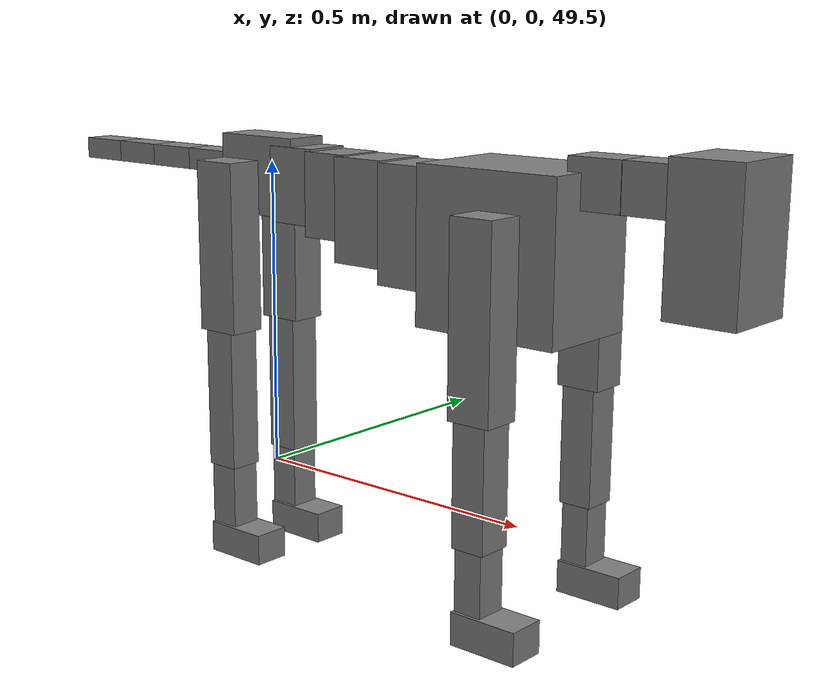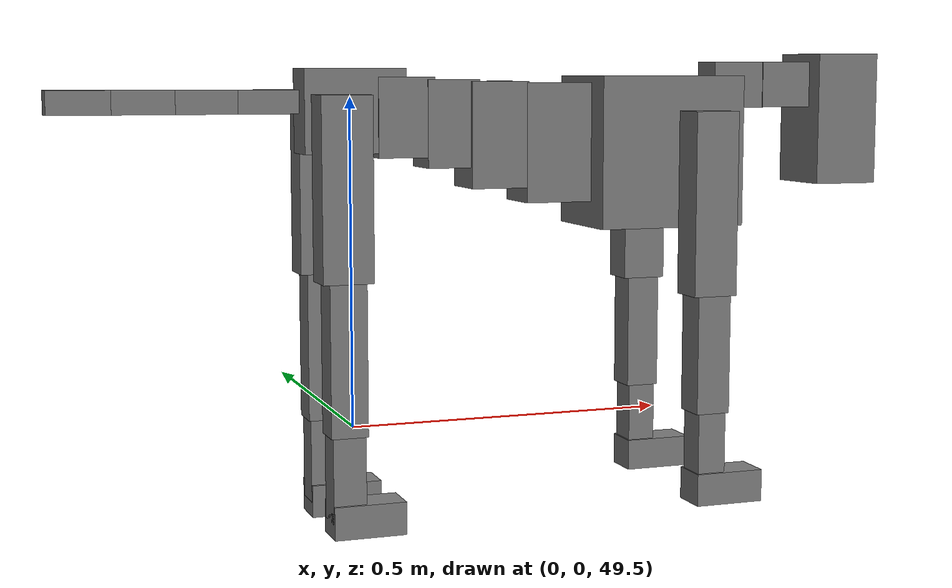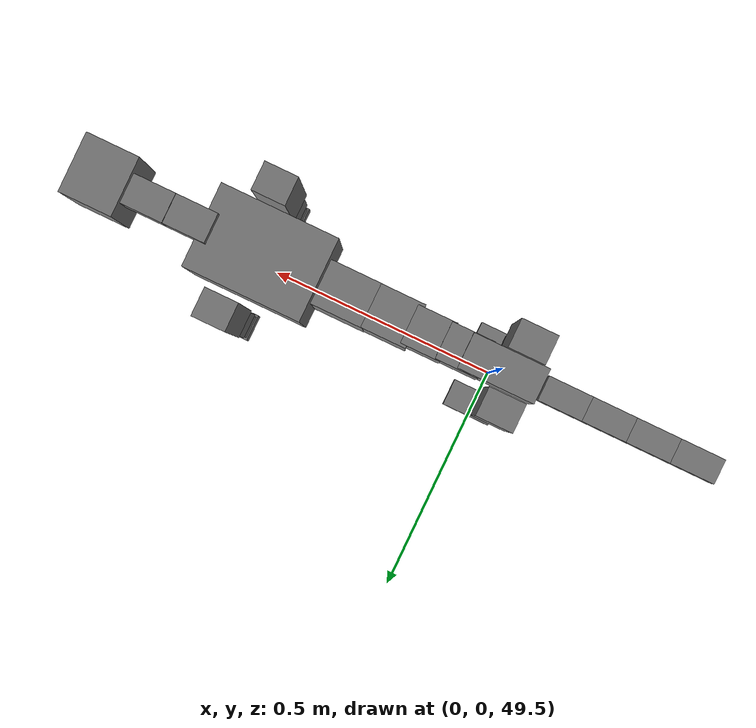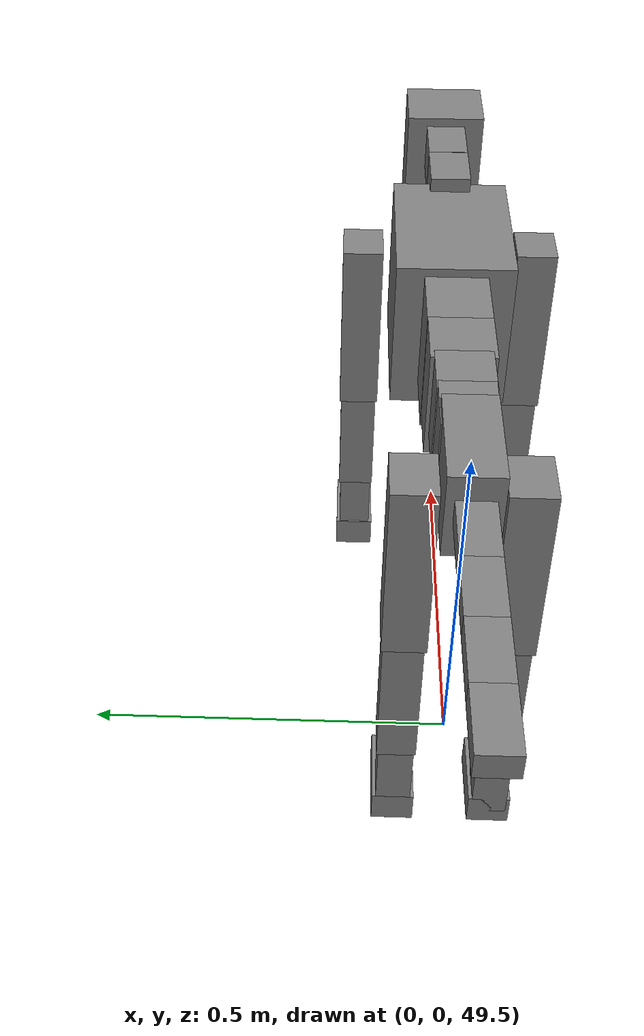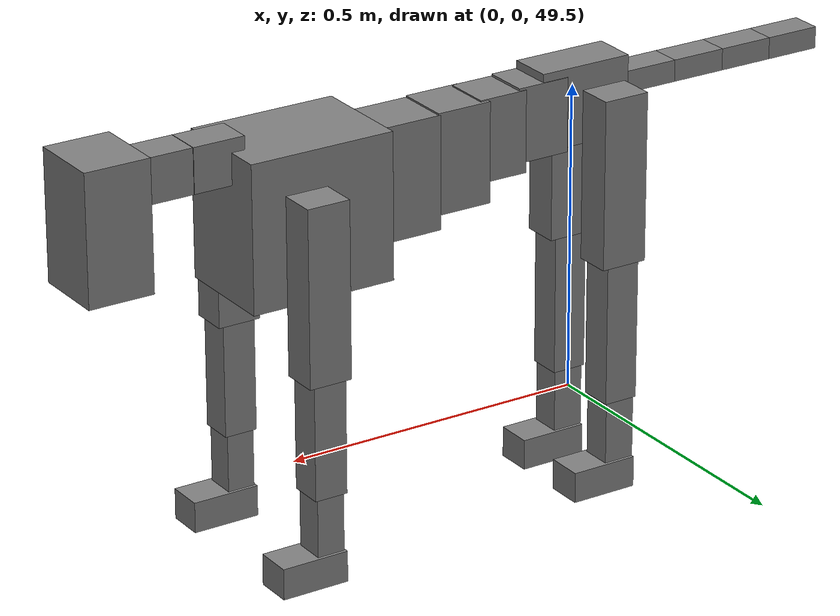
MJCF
<mujoco model="dog">

    <default>
        <joint armature="0.02" stiffness="1" damping="0.2" limited="true"/>
        <geom condim="3" friction="1 0.05 0.05" margin="0.01"/>
        <motor ctrllimited="true" ctrlrange="-1.0 1.0" forcelimited="true" gear="50"/>
    </default>

    <compiler inertiafromorphgymeom="true" angle="radian"/>

    <option timestep="0.016" iterations="50" tolerance="1e-10" solver="Newton" jacobian="dense" cone="pyramidal"/>

    <size nconmax="20000" njmax="60000" nstack="5000000"/>
    <visual>
        <map force="0.1" zfar="30"/>
        <rgba haze="0.15 0.25 0.35 1"/>
        <quality shadowsize="2048"/>
        <global offwidth="800" offheight="800"/>
    </visual>

    <asset>
        <texture type="skybox" builtin="gradient" rgb1="0.3 0.5 0.7" rgb2="0 0 0" width="512" height="512"/>
        <texture name="texplane" type="2d" builtin="checker" rgb1=".2 .3 .4" rgb2=".1 0.15 0.2" width="512" height="512"
                 mark="cross" markrgb=".8 .8 .8"/>
        <texture name="texgeom" type="cube" builtin="flat" mark="cross" width="127" height="1278"
                 rgb1="0.8 0.6 0.4" rgb2="0.8 0.6 0.4" markrgb="1 1 1" random="0.01"/>

        <material name="matplane" reflectance="0.3" texture="texplane" texrepeat="1 1" texuniform="true"/>
        <material name="matgeom" texture="texgeom" texuniform="true" rgba="0.8 0.6 .4 1"/>
    </asset>

    <worldbody>
        <geom name="floor" pos="0 0 0" size="0 0 .25" type="plane" material="matplane" condim="3"/>

        <light directional="false" diffuse=".2 .2 .2" specular="0 0 0" pos="0 0 5" dir="0 0 -1" castshadow="false"/>
        <light mode="targetbodycom" target="torso" directional="false" diffuse=".8 .8 .8" specular="0.3 0.3 0.3"
               pos="0 0 4.0" dir="0 0 -1"/>

        <body name="root" pos="0 0 50">
            <freejoint name="root_1"/>
            <geom type="box" pos="0 0 -0.02" size="0.0774  0.0358  0.063" density="2030"/>

            <body name="spine1" pos="0.054 0 0">
                <joint name="spine1_y" axis="0 1 0" range="0 0.7" limited="true"/>
                <geom type="box" pos="0.02375 0 -0.03" size="0.04375  0.0375  0.05985" density="2030"/>

                <body name="spine2" pos="0.0612 0 0">
                    <joint name="spine2_y" axis="0 1 0" range="-0.15 0.15" limited="true"/>
                    <geom type="box" pos="0.03555  0  -0.04" size="0.04055  0.039  0.06615" density="2030"/>

                    <body name="spine3" pos="0.0730 0 0">
                        <joint name="spine3_y" axis="0 1 0" range="-0.15 0.15" limited="true"/>
                        <geom type="box" pos="0.03555  0  -0.057" size="0.04555  0.0445  0.081" density="2030"/>

                        <body name="spine4" pos="0.0780 0 0">
                            <joint name="spine4_y" axis="0 1 0" range="-0.15 0.15" limited="true"/>
                            <geom type="box" pos="0.05265  0  -0.07" size="0.05265  0.045  0.09135" density="2030"/>

                            <body name="torso" pos="0.1082 0 0">
                                <joint name="torso_y" axis="0 1 0" range="-0.15 0.15" limited="true"/>
                                <geom type="box" pos="0.11925  0  -0.085" size="0.11925  0.085  0.11745"
                                      density="2030"/>

                                <body name="neck1" pos="0.2160  0   0.0180">
                                    <joint name="neck1_y" axis="0 1 0" range="-1.2  -1" limited="true"/>
                                    <geom type="box" pos="0.0423  0  0" size="0.0423  0.03  0.036" density="2325"/>

                                    <body name="neck2" pos="0.0853  0  0">
                                        <joint name="neck2_y" axis="0 1 0" range="0.1  0" limited="true"/>
                                        <geom type="box" pos="0.0423  0  0" size="0.0423  0.03  0.036" density="2325"/>

                                        <body name="head" pos="0.0853  0  0">
                                            <joint name="head_y" axis="0 1 0" range="-0.3  -0.2" limited="true"/>
                                            <geom type="box" pos="0.0531  0  -0.055" size="0.0531  0.06  0.1044"
                                                  density="4030"/>

                                        </body>
                                    </body>
                                </body>

                                <body name="front_shoulder" pos="0.156  0   -0.0480">
                                    <joint name="front_shoulder_y" axis="0 1 0" range="-1 1.5" limited="true"/>
                                    <geom type="box" pos="0   0.13  -0.1142" size="0.0351  0.03  0.14085"
                                          density="1158"/>
                                    <geom type="box" pos="0  -0.13  -0.1142" size="0.0351  0.03  0.14085"
                                          density="1158"/>

                                    <body name="front_elbow" pos="0  0  -0.2284">
                                        <joint name="front_elbow_y" axis="0 1 0" range="-2 0" limited="true"/>
                                        <geom type="box" pos="0   0.13   -0.1054" size="0.0269  0.0275  0.1039"
                                              density="1081"/>
                                        <geom type="box" pos="0  -0.13  -0.1054" size="0.0269  0.0275  0.1039"
                                              density="1081"/>

                                        <body name="front_wrist" pos="0  0  -0.2107">
                                            <joint name="front_wrist_y" axis="0 1 0" range="-0.2 0" limited="true"/>
                                            <geom type="box" pos="0   0.13   -0.0536" size="0.0225  0.025  0.06675"
                                                  density="1664"/>
                                            <geom type="box" pos="0  -0.13  -0.0536" size="0.0225  0.025  0.06675"
                                                  density="1664"/>

                                            <body name="front_finger_end" pos="0  0  -0.1073">
                                                <joint name="front_finger_y" axis="0 1 0" range="-0.4 1"
                                                       limited="true"/>
                                                <geom type="box" pos="0.03   0.13  -0.01" size="0.055   0.03   0.025 "
                                                      density="1515"/>
                                                <geom type="box" pos="0.03  -0.13  -0.01" size="0.055   0.03   0.025 "
                                                      density="1515"/>

                                            </body>

                                        </body>
                                    </body>
                                </body>

                            </body>
                        </body>
                    </body>
                </body>
            </body>

            <body name="back_hip" pos="-0.03 0 -0.018">
                <joint name="back_hip_y" axis="0 1 0" range="-1.5 0.3" limited="true"/>
                <geom type="box" pos="0  0.07    -0.1140" size="0.03825   0.03   0.1368 " density="1154"/>
                <geom type="box" pos="0 -0.07  -0.1140" size="0.03825   0.03   0.1368 " density="1154"/>

                <body name="back_knee" pos="0 0 -0.2281">
                    <joint name="back_knee_y" axis="0 1 0" range="0 2.8" limited="true"/>
                    <geom type="box" pos="0  0.07  -0.1172" size="0.0279   0.0275  0.13275" density="1227"/>
                    <geom type="box" pos="0 -0.07  -0.1172" size="0.0279   0.0275  0.13275" density="1227"/>

                    <body name="back_ankle" pos="0 0 -0.2343">
                        <joint name="back_ankle_y" axis="0 1 0" range="-2.2 0" limited="true"/>
                        <geom type="box" pos="0  0.07  -0.0666" size="0.025  0.025  0.07785 " density="1284"/>
                        <geom type="box" pos="0 -0.07  -0.0666" size="0.025  0.025  0.07785 " density="1284"/>

                        <body name="back_toe_end" pos="0 0 -0.1322">
                            <joint name="back_toe_y" axis="0 1 0" range="-0.4 1" limited="true"/>
                            <geom type="box" pos="0.03  0.07  -0.01" size="0.055   0.03 0.025" density="1515"/>
                            <geom type="box" pos="0.03 -0.07  -0.01" size="0.055   0.03 0.025" density="1515"/>

                        </body>
                    </body>
                </body>
            </body>

            <body name="tail1" pos="-0.074 0 -0.006">
                <joint name="tail1_y" axis="0 1 0" range="-0.2 0.2" limited="true"/>
                <geom type="box" pos="-0.0536  0  0" size="0.045  0.025  0.0175" density="1587"/>

                <body name="tail2" pos="-0.09 0 0">
                    <joint name="tail2_y" axis="0 1 0" range="-0.2 0.2" limited="true"/>
                    <geom type="box" pos="-0.0536  0  0" size="0.045  0.025  0.0175" density="1587"/>

                    <body name="tail3" pos="-0.09 0 0">
                        <joint name="tail3_y" axis="0 1 0" range="-0.2 0.2" limited="true"/>
                        <geom type="box" pos="-0.0536  0  0" size="0.045  0.025  0.0175" density="1587"/>

                        <body name="tail4" pos="-0.09 0 0">
                            <joint name="tail4_y" axis="0 1 0" range="-0.2 0.2" limited="true"/>
                            <geom type="box" pos="-0.0536  0  0" size="0.045  0.025  0.0175" density="1587"/>

                        </body>
                    </body>
                </body>
            </body>
        </body>
    </worldbody>

    <actuator>
        <motor joint="spine1_y" forcerange="-150 150     "/>
        <motor joint="spine2_y" forcerange="-150 150     "/>
        <motor joint="spine3_y" forcerange="-150 150     "/>
        <motor joint="spine4_y" forcerange="-150 150     "/>
        <motor joint="torso_y" forcerange="-150 150     "/>
        <motor joint="neck1_y" forcerange="-100 100       "/>
        <motor joint="neck2_y" forcerange="-100 100       "/>
        <motor joint="head_y" forcerange="-150 150       "/>
        <motor joint="front_shoulder_y" forcerange="-150 150    "/>
        <motor joint="front_elbow_y" forcerange="-150 150    "/>
        <motor joint="front_wrist_y" forcerange="-100 100     "/>
        <motor joint="front_finger_y" forcerange="-60  60     "/>
        <motor joint="back_hip_y" forcerange="-300 300    "/>
        <motor joint="back_knee_y" forcerange="-300 300    "/>
        <motor joint="back_angle_y" forcerange="-150 150    "/>
        <motor joint="back_toe_y" forcerange="-80  80     "/>
        <motor joint="tail1_y" forcerange="-50 50     "/>
        <motor joint="tail2_y" forcerange="-50 50     "/>
        <motor joint="tail3_y" forcerange="-50 50     "/>
        <motor joint="tail4_y" forcerange="-50 50     "/>
    </actuator>
</mujoco>
